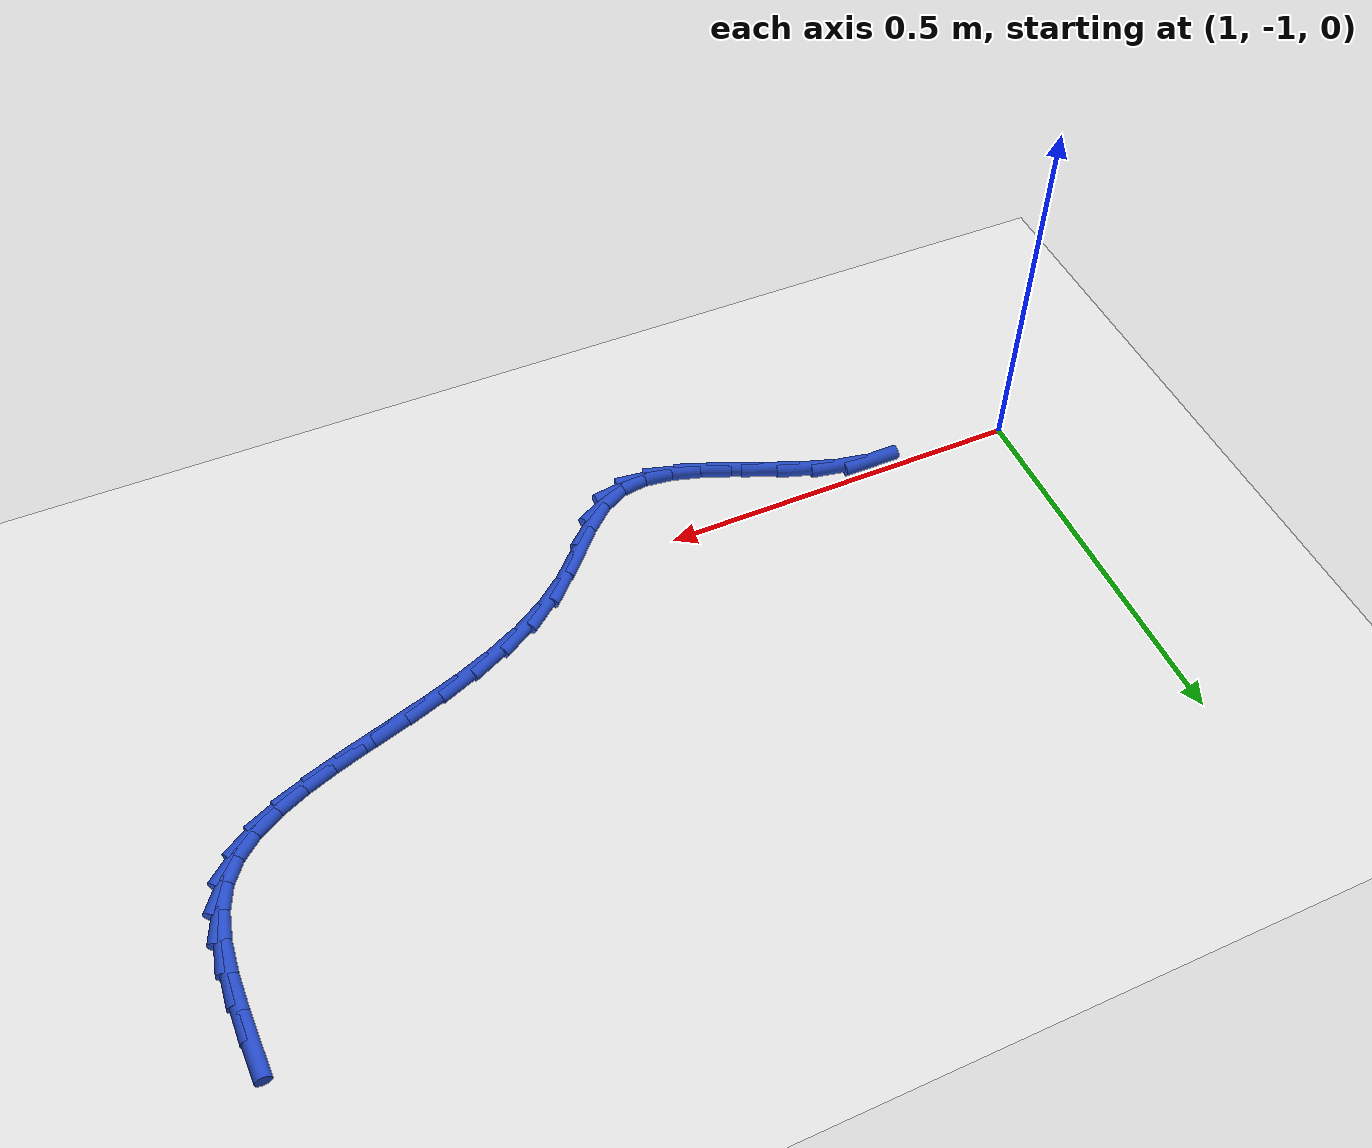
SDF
<sdf version="1.6">
 <world name="default">
  <model name="ground_plane">
   <static>1</static>
   <link name="link">
    <collision name="collision">
     <geometry><plane><normal>0 0 1</normal><size>100 100</size></plane></geometry>
     <surface><friction><ode><mu>100</mu><mu2>50</mu2></ode></friction></surface>
    </collision>
    <visual name="visual">
     <cast_shadows>0</cast_shadows>
     <geometry><plane><normal>0 0 1</normal><size>100 100</size></plane></geometry>
     <material>
      <script><uri>file://media/materials/scripts/gazebo.material</uri><name>Gazebo/WhiteGlow</name></script>
     </material>
    </visual>
   </link>
  </model>
  <model name="line">
   <link name="link_106">
    <pose>2.1627647211701997 -0.5436612579113247 0.01 0 1.57 -1.4907427686726116</pose>
    <collision name="collision">
     <geometry><cylinder><radius>0.01</radius><length>0.08</length></cylinder></geometry>
    </collision>
    <visual name="visual">
     <material>
      <script><name>Gazebo/Blue</name><uri>file://media/materials/scripts/gazebo.material</uri></script>
     </material>
     <geometry><cylinder><radius>0.01</radius><length>0.08</length></cylinder></geometry>
    </visual>
   </link>
   <link name="link_107">
    <pose>2.1664052203589184 -0.5890398662924993 0.01 0 1.57 -1.5223839336788507</pose>
    <collision name="collision">
     <geometry><cylinder><radius>0.01</radius><length>0.08</length></cylinder></geometry>
    </collision>
    <visual name="visual">
     <material>
      <script><name>Gazebo/Blue</name><uri>file://media/materials/scripts/gazebo.material</uri></script>
     </material>
     <geometry><cylinder><radius>0.01</radius><length>0.08</length></cylinder></geometry>
    </visual>
   </link>
   <link name="link_108">
    <pose>2.168476306798104 -0.6317865270142089 0.01 0 1.57 1.547979037148773</pose>
    <collision name="collision">
     <geometry><cylinder><radius>0.01</radius><length>0.08</length></cylinder></geometry>
    </collision>
    <visual name="visual">
     <material>
      <script><name>Gazebo/Blue</name><uri>file://media/materials/scripts/gazebo.material</uri></script>
     </material>
     <geometry><cylinder><radius>0.01</radius><length>0.08</length></cylinder></geometry>
    </visual>
   </link>
   <link name="link_109">
    <pose>2.167572830174609 -0.6713757963843678 0.01 0 1.57 1.4247068676211814</pose>
    <collision name="collision">
     <geometry><cylinder><radius>0.01</radius><length>0.08</length></cylinder></geometry>
    </collision>
    <visual name="visual">
     <material>
      <script><name>Gazebo/Blue</name><uri>file://media/materials/scripts/gazebo.material</uri></script>
     </material>
     <geometry><cylinder><radius>0.01</radius><length>0.08</length></cylinder></geometry>
    </visual>
   </link>
   <link name="link_110">
    <pose>2.1622896401752865 -0.7072822307108889 0.01 0 1.57 1.2348608749621917</pose>
    <collision name="collision">
     <geometry><cylinder><radius>0.01</radius><length>0.08</length></cylinder></geometry>
    </collision>
    <visual name="visual">
     <material>
      <script><name>Gazebo/Blue</name><uri>file://media/materials/scripts/gazebo.material</uri></script>
     </material>
     <geometry><cylinder><radius>0.01</radius><length>0.08</length></cylinder></geometry>
    </visual>
   </link>
   <link name="link_111">
    <pose>2.15122158648699 -0.7389803863016867 0.01 0 1.57 0.980181670290711</pose>
    <collision name="collision">
     <geometry><cylinder><radius>0.01</radius><length>0.08</length></cylinder></geometry>
    </collision>
    <visual name="visual">
     <material>
      <script><name>Gazebo/Blue</name><uri>file://media/materials/scripts/gazebo.material</uri></script>
     </material>
     <geometry><cylinder><radius>0.01</radius><length>0.08</length></cylinder></geometry>
    </visual>
   </link>
   <link name="link_112">
    <pose>2.133093909534444 -0.7660186130096834 0.01 0 1.57 0.7364895926720736</pose>
    <collision name="collision">
     <geometry><cylinder><radius>0.01</radius><length>0.08</length></cylinder></geometry>
    </collision>
    <visual name="visual">
     <material>
      <script><name>Gazebo/Blue</name><uri>file://media/materials/scripts/gazebo.material</uri></script>
     </material>
     <geometry><cylinder><radius>0.01</radius><length>0.08</length></cylinder></geometry>
    </visual>
   </link>
   <link name="link_113">
    <pose>2.1080346509819634 -0.7887391642893884 0.01 0 1.57 0.5550685959691314</pose>
    <collision name="collision">
     <geometry><cylinder><radius>0.01</radius><length>0.08</length></cylinder></geometry>
    </collision>
    <visual name="visual">
     <material>
      <script><name>Gazebo/Blue</name><uri>file://media/materials/scripts/gazebo.material</uri></script>
     </material>
     <geometry><cylinder><radius>0.01</radius><length>0.08</length></cylinder></geometry>
    </visual>
   </link>
   <link name="link_114">
    <pose>2.077025970452677 -0.8079676744938645 0.01 0 1.57 0.4317260269761285</pose>
    <collision name="collision">
     <geometry><cylinder><radius>0.01</radius><length>0.08</length></cylinder></geometry>
    </collision>
    <visual name="visual">
     <material>
      <script><name>Gazebo/Blue</name><uri>file://media/materials/scripts/gazebo.material</uri></script>
     </material>
     <geometry><cylinder><radius>0.01</radius><length>0.08</length></cylinder></geometry>
    </visual>
   </link>
   <link name="link_115">
    <pose>2.0410621407753435 -0.8245366333433539 0.01 0 1.57 0.3537134465056357</pose>
    <collision name="collision">
     <geometry><cylinder><radius>0.01</radius><length>0.08</length></cylinder></geometry>
    </collision>
    <visual name="visual">
     <material>
      <script><name>Gazebo/Blue</name><uri>file://media/materials/scripts/gazebo.material</uri></script>
     </material>
     <geometry><cylinder><radius>0.01</radius><length>0.08</length></cylinder></geometry>
    </visual>
   </link>
   <link name="link_116">
    <pose>2.001137434778725 -0.8392785305580979 0.01 0 1.57 0.31017040173664784</pose>
    <collision name="collision">
     <geometry><cylinder><radius>0.01</radius><length>0.08</length></cylinder></geometry>
    </collision>
    <visual name="visual">
     <material>
      <script><name>Gazebo/Blue</name><uri>file://media/materials/scripts/gazebo.material</uri></script>
     </material>
     <geometry><cylinder><radius>0.01</radius><length>0.08</length></cylinder></geometry>
    </visual>
   </link>
   <link name="link_117">
    <pose>1.9582461252915795 -0.8530258558583387 0.01 0 1.57 0.2940344979994388</pose>
    <collision name="collision">
     <geometry><cylinder><radius>0.01</radius><length>0.08</length></cylinder></geometry>
    </collision>
    <visual name="visual">
     <material>
      <script><name>Gazebo/Blue</name><uri>file://media/materials/scripts/gazebo.material</uri></script>
     </material>
     <geometry><cylinder><radius>0.01</radius><length>0.08</length></cylinder></geometry>
    </visual>
   </link>
   <link name="link_118">
    <pose>1.9133824851426688 -0.866611098964319 0.01 0 1.57 0.30149551088402143</pose>
    <collision name="collision">
     <geometry><cylinder><radius>0.01</radius><length>0.08</length></cylinder></geometry>
    </collision>
    <visual name="visual">
     <material>
      <script><name>Gazebo/Blue</name><uri>file://media/materials/scripts/gazebo.material</uri></script>
     </material>
     <geometry><cylinder><radius>0.01</radius><length>0.08</length></cylinder></geometry>
    </visual>
   </link>
   <link name="link_119">
    <pose>1.8675407871607514 -0.8808667495962801 0.01 0 1.57 0.33121391060313654</pose>
    <collision name="collision">
     <geometry><cylinder><radius>0.01</radius><length>0.08</length></cylinder></geometry>
    </collision>
    <visual name="visual">
     <material>
      <script><name>Gazebo/Blue</name><uri>file://media/materials/scripts/gazebo.material</uri></script>
     </material>
     <geometry><cylinder><radius>0.01</radius><length>0.08</length></cylinder></geometry>
    </visual>
   </link>
   <link name="link_120">
    <pose>1.8217153041745873 -0.8966252974744651 0.01 0 1.57 0.38373265777856513</pose>
    <collision name="collision">
     <geometry><cylinder><radius>0.01</radius><length>0.08</length></cylinder></geometry>
    </collision>
    <visual name="visual">
     <material>
      <script><name>Gazebo/Blue</name><uri>file://media/materials/scripts/gazebo.material</uri></script>
     </material>
     <geometry><cylinder><radius>0.01</radius><length>0.08</length></cylinder></geometry>
    </visual>
   </link>
   <link name="link_121">
    <pose>1.7769003090129387 -0.914719232319115 0.01 0 1.57 0.4609660535810747</pose>
    <collision name="collision">
     <geometry><cylinder><radius>0.01</radius><length>0.08</length></cylinder></geometry>
    </collision>
    <visual name="visual">
     <material>
      <script><name>Gazebo/Blue</name><uri>file://media/materials/scripts/gazebo.material</uri></script>
     </material>
     <geometry><cylinder><radius>0.01</radius><length>0.08</length></cylinder></geometry>
    </visual>
   </link>
   <link name="link_122">
    <pose>1.7340900745045635 -0.9359810438504725 0.01 0 1.57 0.5654369222945441</pose>
    <collision name="collision">
     <geometry><cylinder><radius>0.01</radius><length>0.08</length></cylinder></geometry>
    </collision>
    <visual name="visual">
     <material>
      <script><name>Gazebo/Blue</name><uri>file://media/materials/scripts/gazebo.material</uri></script>
     </material>
     <geometry><cylinder><radius>0.01</radius><length>0.08</length></cylinder></geometry>
    </visual>
   </link>
   <link name="link_123">
    <pose>1.6942788734782224 -0.9612432217887794 0.01 0 1.57 0.6986126161108204</pose>
    <collision name="collision">
     <geometry><cylinder><radius>0.01</radius><length>0.08</length></cylinder></geometry>
    </collision>
    <visual name="visual">
     <material>
      <script><name>Gazebo/Blue</name><uri>file://media/materials/scripts/gazebo.material</uri></script>
     </material>
     <geometry><cylinder><radius>0.01</radius><length>0.08</length></cylinder></geometry>
    </visual>
   </link>
   <link name="link_124">
    <pose>1.6584568610383035 -0.9913308279998385 0.01 0 1.57 0.8209664122551037</pose>
    <collision name="collision">
     <geometry><cylinder><radius>0.01</radius><length>0.08</length></cylinder></geometry>
    </collision>
    <visual name="visual">
     <material>
      <script><name>Gazebo/Blue</name><uri>file://media/materials/scripts/gazebo.material</uri></script>
     </material>
     <geometry><cylinder><radius>0.01</radius><length>0.08</length></cylinder></geometry>
    </visual>
   </link>
   <link name="link_125">
    <pose>1.6267039140278363 -1.0254268973910206 0.01 0 1.57 0.8475652461998507</pose>
    <collision name="collision">
     <geometry><cylinder><radius>0.01</radius><length>0.08</length></cylinder></geometry>
    </collision>
    <visual name="visual">
     <material>
      <script><name>Gazebo/Blue</name><uri>file://media/materials/scripts/gazebo.material</uri></script>
     </material>
     <geometry><cylinder><radius>0.01</radius><length>0.08</length></cylinder></geometry>
    </visual>
   </link>
   <link name="link_126">
    <pose>1.5970503171179289 -1.0590172595832075 0.01 0 1.57 0.7553528224565373</pose>
    <collision name="collision">
     <geometry><cylinder><radius>0.01</radius><length>0.08</length></cylinder></geometry>
    </collision>
    <visual name="visual">
     <material>
      <script><name>Gazebo/Blue</name><uri>file://media/materials/scripts/gazebo.material</uri></script>
     </material>
     <geometry><cylinder><radius>0.01</radius><length>0.08</length></cylinder></geometry>
    </visual>
   </link>
   <link name="link_127">
    <pose>1.5672461194977036 -1.0870822347990339 0.01 0 1.57 0.5000535279477681</pose>
    <collision name="collision">
     <geometry><cylinder><radius>0.01</radius><length>0.08</length></cylinder></geometry>
    </collision>
    <visual name="visual">
     <material>
      <script><name>Gazebo/Blue</name><uri>file://media/materials/scripts/gazebo.material</uri></script>
     </material>
     <geometry><cylinder><radius>0.01</radius><length>0.08</length></cylinder></geometry>
    </visual>
   </link>
   <link name="link_128">
    <pose>1.5350646166413753 -1.1046653067182888 0.01 0 1.57 0.1439521921724851</pose>
    <collision name="collision">
     <geometry><cylinder><radius>0.01</radius><length>0.08</length></cylinder></geometry>
    </collision>
    <visual name="visual">
     <material>
      <script><name>Gazebo/Blue</name><uri>file://media/materials/scripts/gazebo.material</uri></script>
     </material>
     <geometry><cylinder><radius>0.01</radius><length>0.08</length></cylinder></geometry>
    </visual>
   </link>
   <link name="link_129">
    <pose>1.4993928279890663 -1.109836105164405 0.01 0 1.57 -0.1253176762033019</pose>
    <collision name="collision">
     <geometry><cylinder><radius>0.01</radius><length>0.08</length></cylinder></geometry>
    </collision>
    <visual name="visual">
     <material>
      <script><name>Gazebo/Blue</name><uri>file://media/materials/scripts/gazebo.material</uri></script>
     </material>
     <geometry><cylinder><radius>0.01</radius><length>0.08</length></cylinder></geometry>
    </visual>
   </link>
   <link name="link_130">
    <pose>1.4606993326524313 -1.104961582140712 0.01 0 1.57 -0.2889518792990292</pose>
    <collision name="collision">
     <geometry><cylinder><radius>0.01</radius><length>0.08</length></cylinder></geometry>
    </collision>
    <visual name="visual">
     <material>
      <script><name>Gazebo/Blue</name><uri>file://media/materials/scripts/gazebo.material</uri></script>
     </material>
     <geometry><cylinder><radius>0.01</radius><length>0.08</length></cylinder></geometry>
    </visual>
   </link>
   <link name="link_131">
    <pose>1.4195731456670095 -1.092735931155411 0.01 0 1.57 -0.3743652193026448</pose>
    <collision name="collision">
     <geometry><cylinder><radius>0.01</radius><length>0.08</length></cylinder></geometry>
    </collision>
    <visual name="visual">
     <material>
      <script><name>Gazebo/Blue</name><uri>file://media/materials/scripts/gazebo.material</uri></script>
     </material>
     <geometry><cylinder><radius>0.01</radius><length>0.08</length></cylinder></geometry>
    </visual>
   </link>
   <link name="link_132">
    <pose>1.3766032820683414 -1.075853345716705 0.01 0 1.57 -0.4028260284271112</pose>
    <collision name="collision">
     <geometry><cylinder><radius>0.01</radius><length>0.08</length></cylinder></geometry>
    </collision>
    <visual name="visual">
     <material>
      <script><name>Gazebo/Blue</name><uri>file://media/materials/scripts/gazebo.material</uri></script>
     </material>
     <geometry><cylinder><radius>0.01</radius><length>0.08</length></cylinder></geometry>
    </visual>
   </link>
   <link name="link_133">
    <pose>1.3323787568919656 -1.0570080193327962 0.01 0 1.57 -0.3835331819172979</pose>
    <collision name="collision">
     <geometry><cylinder><radius>0.01</radius><length>0.08</length></cylinder></geometry>
    </collision>
    <visual name="visual">
     <material>
      <script><name>Gazebo/Blue</name><uri>file://media/materials/scripts/gazebo.material</uri></script>
     </material>
     <geometry><cylinder><radius>0.01</radius><length>0.08</length></cylinder></geometry>
    </visual>
   </link>
   <link name="link_134">
    <pose>1.2874885851734212 -1.0388941455118863 0.01 0 1.57 -0.3157199557134032</pose>
    <collision name="collision">
     <geometry><cylinder><radius>0.01</radius><length>0.08</length></cylinder></geometry>
    </collision>
    <visual name="visual">
     <material>
      <script><name>Gazebo/Blue</name><uri>file://media/materials/scripts/gazebo.material</uri></script>
     </material>
     <geometry><cylinder><radius>0.01</radius><length>0.08</length></cylinder></geometry>
    </visual>
   </link>
   <link name="link_135">
    <pose>1.2425217819482473 -1.0242059177621772 0.01 0 1.57 -0.19041042200598982</pose>
    <collision name="collision">
     <geometry><cylinder><radius>0.01</radius><length>0.08</length></cylinder></geometry>
    </collision>
    <visual name="visual">
     <material>
      <script><name>Gazebo/Blue</name><uri>file://media/materials/scripts/gazebo.material</uri></script>
     </material>
     <geometry><cylinder><radius>0.01</radius><length>0.08</length></cylinder></geometry>
    </visual>
   </link>
   <link name="link_136">
    <pose>1.1980673622519835 -1.0156375295918714 0.01 0 1.57 0.0015470019989808164</pose>
    <collision name="collision">
     <geometry><cylinder><radius>0.01</radius><length>0.08</length></cylinder></geometry>
    </collision>
    <visual name="visual">
     <material>
      <script><name>Gazebo/Blue</name><uri>file://media/materials/scripts/gazebo.material</uri></script>
     </material>
     <geometry><cylinder><radius>0.01</radius><length>0.08</length></cylinder></geometry>
    </visual>
   </link>
  </model>
 </world>
</sdf>
